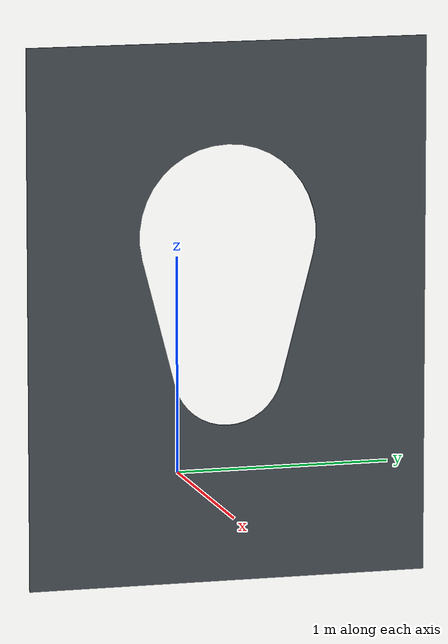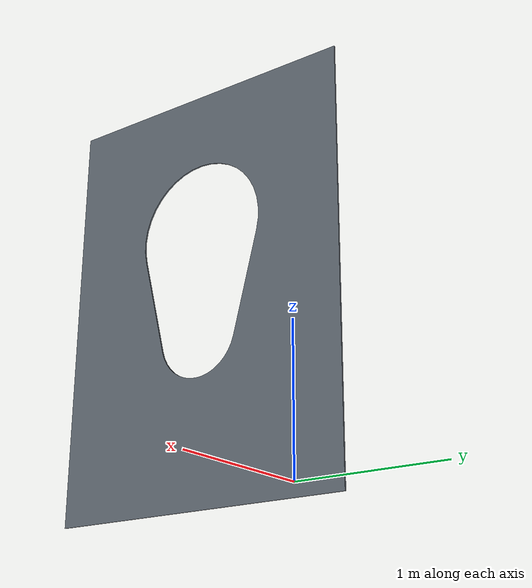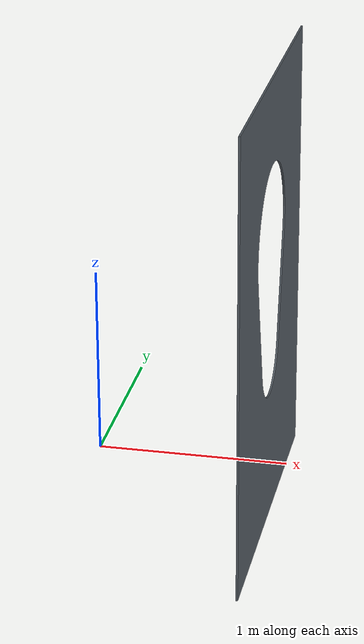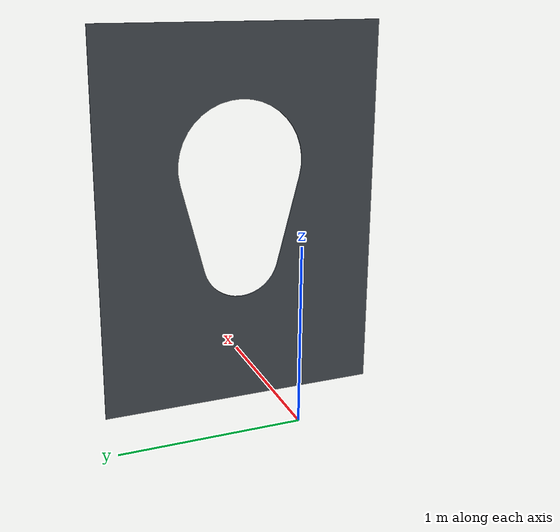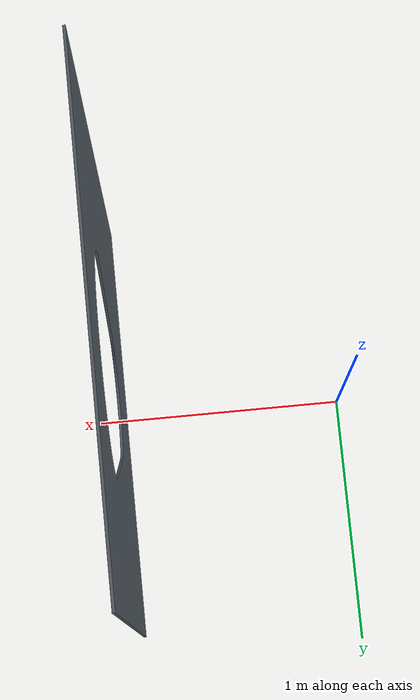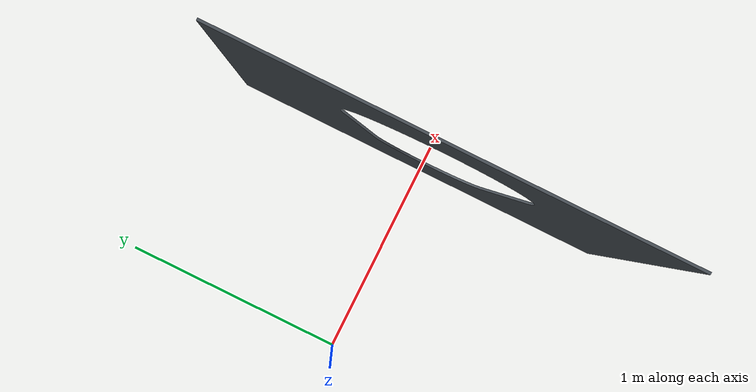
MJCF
<mujoco model="access hole workpiece">
  <asset>
    <material name="workpiece_metal" rgba="0.32 0.35 0.38 1" metallic="0.65" roughness="0.3" />
    <mesh name="access_hole_mesh" file="../meshes/access hole.STL" />
  </asset>
  <worldbody>
    <body name="access_hole" pos="0.9 -0.909 -0.3">
      <geom
        name="access_hole_visual"
        type="mesh"
        mesh="access_hole_mesh"
        material="workpiece_metal"
        contype="0"
        conaffinity="0"
        group="2"
      />
    </body>
  </worldbody>
</mujoco>
